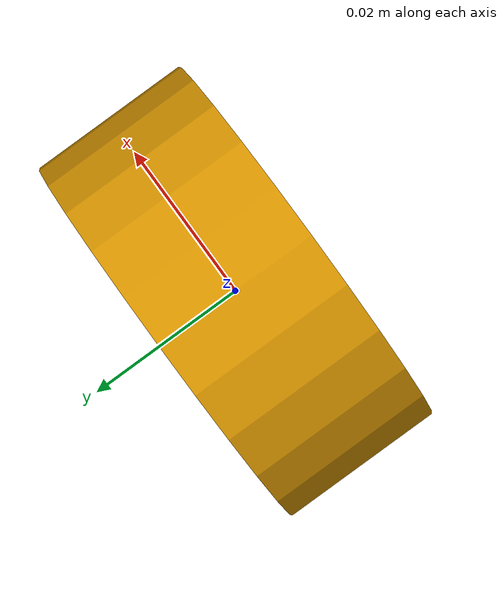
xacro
<!-- 演示变量使用
     1.变量声明；
     2.变量调用；
     3.变量运算；
     测试：
        xacro demo01_property.urdf.xacro
 -->

<robot xmlns:xacro="http://www.ros.org/wiki/xacro" name="Lbot">
    <!-- 变量声明 -->
    <xacro:property name="PI" value="3.1416" />
    <xacro:property name="wheel_radius" value="0.025" />
    <xacro:property name="wheel_length" value="0.02"/>

    <link name="wheel">
        <visual>
            <!-- 变量调用 -->
            <geometry>
                <cylinder radius="${wheel_radius}" length="${wheel_length}"/>
            </geometry>
            <!-- 变量运算 -->
            <origin rpy="${PI / 2} 0.0 0.0"/>
        </visual>
    </link>
</robot>
